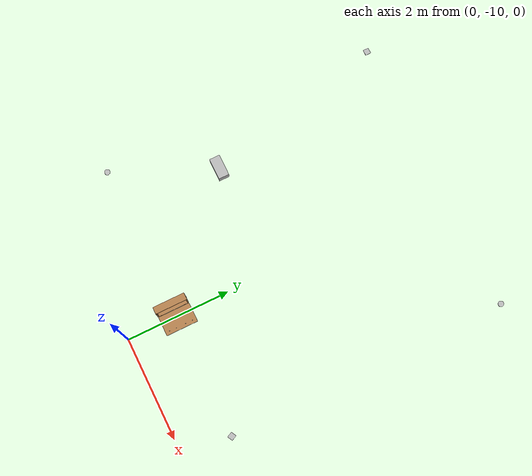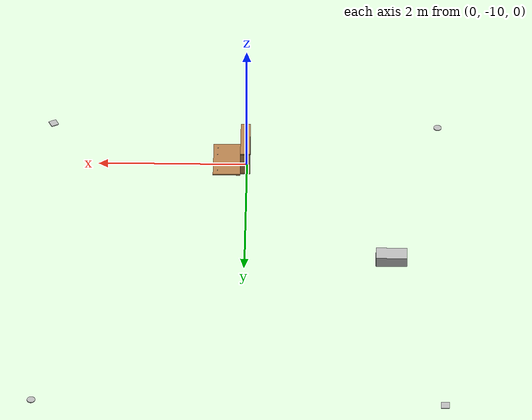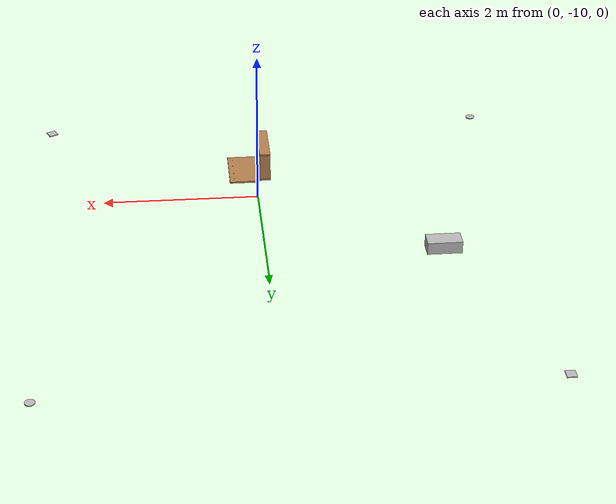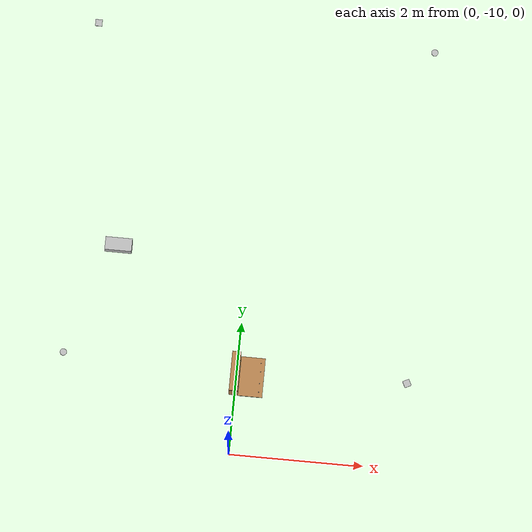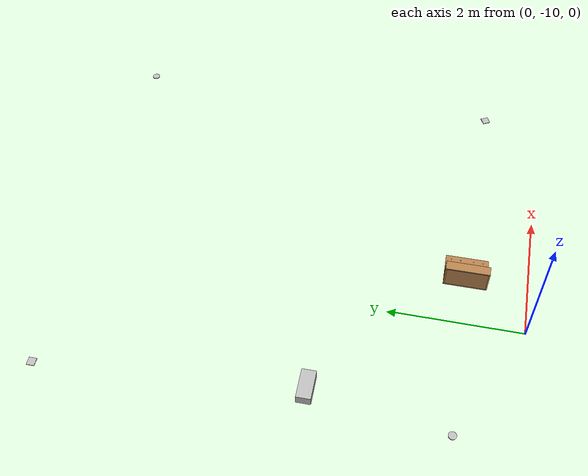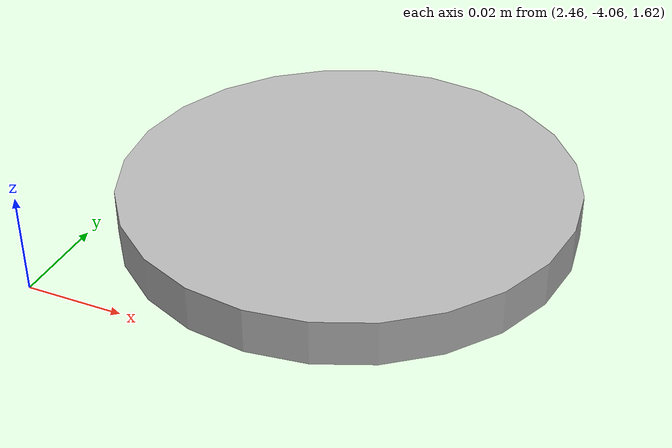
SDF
<sdf version="1.5">
 <world name="default">
  <include><uri>model://sun</uri></include>
  <include>
   <name>mark_label_circle</name>
   <uri>model://mark_label_circle</uri>
   <pose>2.5 -4 1.5 0 0 0</pose>
  </include>
  <include>
   <name>mark_label_square</name>
   <uri>model://mark_label_square</uri>
   <pose>-2.5 -4 1.5 0 0 0</pose>
  </include>
  <include>
   <name>mark_label_diamond</name>
   <uri>model://mark_label_square</uri>
   <pose>2.5 -9 1.5 0 0 90</pose>
  </include>
  <include>
   <name>mark_label_Triangle</name>
   <uri>model://mark_label_circle</uri>
   <pose>-2.5 -9 1.5 0 0 0</pose>
  </include>
  <include><name>cinder_block_2</name><uri>model://cinder_block_2</uri><pose>-1.9 -7.2 1 0 0 0</pose></include>
  <include><name>wooden_case</name><uri>model://wooden_case</uri><pose>0 -9 1 0 0 0</pose></include>
  <physics name="default_physics" default="0" type="ode">
   <gravity>0 0 -9.8066</gravity>
   <ode>
    <solver>
     <type>quick</type>
     <iters>10</iters>
     <sor>1.3</sor>
     <use_dynamic_moi_rescaling>0</use_dynamic_moi_rescaling>
    </solver>
    <constraints>
     <cfm>0</cfm>
     <erp>0.2</erp>
     <contact_max_correcting_vel>100</contact_max_correcting_vel>
     <contact_surface_layer>0.001</contact_surface_layer>
    </constraints>
   </ode>
   <max_step_size>0.004</max_step_size>
   <real_time_factor>1</real_time_factor>
   <real_time_update_rate>250</real_time_update_rate>
   <magnetic_field>6.0e-6 2.3e-5 -4.2e-5</magnetic_field>
  </physics>
 </world>
</sdf>

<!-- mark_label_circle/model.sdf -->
<sdf version='1.4'>
  <model name="mark_label_circle">
    <link name='link'>
      <pose>0 0 0.115 0 0 0</pose>
      <inertial>
        <mass>.990</mass>
        <inertia>
          <ixx>0.00058</ixx>
          <ixy>0</ixy>
          <ixz>0</ixz>
          <iyy>0.00058</iyy>
          <iyz>0</iyz>
          <izz>0.00019</izz>
        </inertia>
      </inertial>
      <collision name='collision'>
            <geometry>
                <cylinder>
                    <radius>.05</radius>
                    <length>.01</length>
                </cylinder>
            </geometry>
      </collision>

      <visual name='visual'>
        <geometry>
                <cylinder>
                  <radius>.05</radius>
                  <length>.01</length>>
                </cylinder>
        </geometry>

        <material>
          <script>
            <uri>model://mark_label_circle/materials/scripts</uri>
            <uri>model://mark_label_circle/materials/textures</uri>
            <name>Mark/Diffuse_circle</name>
          </script>
        </material>
      </visual>
    </link>     
  </model>
</sdf>

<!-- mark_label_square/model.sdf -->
<sdf version='1.4'>
  <model name="mark_label_square">
    <link name='link'>
      <pose>0 0 0.115 0 0 0</pose>
      <inertial>
        <mass>.790</mass>
        <inertia>
          <ixx>0.00058</ixx>
          <ixy>0</ixy>
          <ixz>0</ixz>
          <iyy>0.00058</iyy>
          <iyz>0</iyz>
          <izz>0.00019</izz>
        </inertia>
      </inertial>
      <collision name='collision'>
        <geometry>
                <box>
                  <size>.10 .10 .01</size>
                </box>
        </geometry>
      </collision>

      <visual name='visual'>
        <geometry>
                <box>
                  <size>.10 .10 .01</size>
                </box>
        </geometry>

        <material>
          <script>
            <uri>model://mark_label_square/materials/scripts</uri>
            <uri>model://mark_label_square/materials/textures</uri>
            <name>Mark/Diffuse_square</name>
          </script>
        </material>
      </visual>
    </link>     
  </model>
</sdf>

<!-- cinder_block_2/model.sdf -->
<sdf version="1.5">
  <model name="cinder_block_2">
    <link name="link">
      <inertial>
        <pose>0 0 0.07 0 0 0</pose>
        <!-- volume about 0.0085 m^3, density 2000 kg/m^3 -->
        <mass>5</mass>
        <!-- approximate as uniform box 0.37 x 0.17 x 0.20 m -->
        <inertia>
          <ixx>0.06908</ixx>
          <ixy>0.0000</ixy>
          <iyy>0.028705</iyy>
          <ixz>0.0000</ixz>
          <iyz>0.0000</iyz>
          <izz>0.073708</izz>
        </inertia>
      </inertial>
      <visual name="visual">
        <geometry>
	  <box>
		<size>0.396875 0.19368008 0.146</size>
	  </box>
        </geometry>
      </visual>
      <collision name="collision_box">
        <pose>0 0 0 0 0 0</pose>
        <geometry>
          <box>
            <size>0.396875 0.19368008 0.146</size>
          </box>
        </geometry>
        <surface>
          <contact>
            <ode>
              <max_vel>0.1</max_vel>
              <min_depth>0.001</min_depth>
            </ode>
          </contact>
          <friction>
            <ode>
              <mu>1.0</mu>
              <mu2>1.0</mu2>
            </ode>
          </friction>
        </surface>
      </collision>
    </link>
  </model>
</sdf>

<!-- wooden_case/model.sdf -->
<sdf version="1.5">
  <model name="wooden_case">
    <link name="base">

      <pose>0 0 0.024  0 0 0</pose>
      <inertial>
        <pose>-0.02218446808213116 0.0 0.17159249678128843  0 0 0</pose>
        <mass>3.9626366887499986</mass>
        <inertia>
          <ixx>0.2135364168029657</ixx>
          <ixy>0.0</ixy>
          <ixz>0.0007793770806417083</ixz>
          <iyy>0.07089428398599372</iyy>
          <iyz>0.0</iyz>
          <izz>0.15460392299497075</izz>
        </inertia>
      </inertial>

      <collision name="collision_back">
        <pose>-0.053975 0 0.17779999999999999  0 0 0</pose>
        <geometry>
          <box>
            <size>0.019049999999999997 0.5460999999999999 0.3175</size>
          </box>
        </geometry>
        <surface>
          <contact>

            <poissons_ratio>0.347</poissons_ratio>
            <elastic_modulus>8.8e+09</elastic_modulus>
            <ode>
              <kp>100000</kp>
              <kd>100</kd>
              <max_vel>100.0</max_vel>
              <min_depth>0.001</min_depth>
            </ode>
          </contact>
          <friction>
            <torsional>
              <coefficient>1.0</coefficient>
              <use_patch_radius>0</use_patch_radius>
              <surface_radius>0.01</surface_radius>
            </torsional>
          </friction>
        </surface>
      </collision>
      <visual name="visual_back">
        <pose>-0.053975 0 0.17779999999999999  0 0 0</pose>
        <geometry>
          <box>
            <size>0.019049999999999997 0.5460999999999999 0.3175</size>
          </box>
        </geometry>
        <material>
          <script>
            <uri>model://media/materials/scripts/gazebo.material</uri>
            <name>Gazebo/Wood</name>
          </script>
        </material>
      </visual>

      <collision name="collision_bottom">
        <pose>0 0 0.009524999999999999  0 0 0</pose>
        <geometry>
          <box>
            <size>0.127 0.5841999999999999 0.019049999999999997</size>
          </box>
        </geometry>
        <surface>
          <contact>

            <poissons_ratio>0.347</poissons_ratio>
            <elastic_modulus>8.8e+09</elastic_modulus>
            <ode>
              <kp>100000</kp>
              <kd>100</kd>
              <max_vel>100.0</max_vel>
              <min_depth>0.001</min_depth>
            </ode>
          </contact>
          <friction>
            <torsional>
              <coefficient>1.0</coefficient>
              <use_patch_radius>0</use_patch_radius>
              <surface_radius>0.01</surface_radius>
            </torsional>
          </friction>
        </surface>
      </collision>
      <visual name="visual_bottom">
        <pose>0 0 0.009524999999999999  0 0 0</pose>
        <geometry>
          <box>
            <size>0.127 0.5841999999999999 0.019049999999999997</size>
          </box>
        </geometry>
        <material>
          <script>
            <uri>model://media/materials/scripts/gazebo.material</uri>
            <name>Gazebo/Wood</name>
          </script>
        </material>
      </visual>

      <collision name="collision_top">
        <pose>0 0 0.34607499999999997  0 0 0</pose>
        <geometry>
          <box>
            <size>0.127 0.5841999999999999 0.019049999999999997</size>
          </box>
        </geometry>
        <surface>
          <contact>

            <poissons_ratio>0.347</poissons_ratio>
            <elastic_modulus>8.8e+09</elastic_modulus>
            <ode>
              <kp>100000</kp>
              <kd>100</kd>
              <max_vel>100.0</max_vel>
              <min_depth>0.001</min_depth>
            </ode>
          </contact>
          <friction>
            <torsional>
              <coefficient>1.0</coefficient>
              <use_patch_radius>0</use_patch_radius>
              <surface_radius>0.01</surface_radius>
            </torsional>
          </friction>
        </surface>
      </collision>
      <visual name="visual_top">
        <pose>0 0 0.34607499999999997  0 0 0</pose>
        <geometry>
          <box>
            <size>0.127 0.5841999999999999 0.019049999999999997</size>
          </box>
        </geometry>
        <material>
          <script>
            <uri>model://media/materials/scripts/gazebo.material</uri>
            <name>Gazebo/Wood</name>
          </script>
        </material>
      </visual>

      <collision name="collision_left">
        <pose>0 -0.28257499999999997 0.17779999999999999  0 0 0</pose>
        <geometry>
          <box>
            <size>0.127 0.019049999999999997 0.3175</size>
          </box>
        </geometry>
        <surface>
          <contact>

            <poissons_ratio>0.347</poissons_ratio>
            <elastic_modulus>8.8e+09</elastic_modulus>
            <ode>
              <kp>100000</kp>
              <kd>100</kd>
              <max_vel>100.0</max_vel>
              <min_depth>0.001</min_depth>
            </ode>
          </contact>
          <friction>
            <torsional>
              <coefficient>1.0</coefficient>
              <use_patch_radius>0</use_patch_radius>
              <surface_radius>0.01</surface_radius>
            </torsional>
          </friction>
        </surface>
      </collision>
      <visual name="visual_left">
        <pose>0 -0.28257499999999997 0.17779999999999999  0 0 0</pose>
        <geometry>
          <box>
            <size>0.127 0.019049999999999997 0.3175</size>
          </box>
        </geometry>
        <material>
          <script>
            <uri>model://media/materials/scripts/gazebo.material</uri>
            <name>Gazebo/Wood</name>
          </script>
        </material>
      </visual>

      <collision name="collision_right">
        <pose>0 0.28257499999999997 0.17779999999999999  0 0 0</pose>
        <geometry>
          <box>
            <size>0.127 0.019049999999999997 0.3175</size>
          </box>
        </geometry>
        <surface>
          <contact>

            <poissons_ratio>0.347</poissons_ratio>
            <elastic_modulus>8.8e+09</elastic_modulus>
            <ode>
              <kp>100000</kp>
              <kd>100</kd>
              <max_vel>100.0</max_vel>
              <min_depth>0.001</min_depth>
            </ode>
          </contact>
          <friction>
            <torsional>
              <coefficient>1.0</coefficient>
              <use_patch_radius>0</use_patch_radius>
              <surface_radius>0.01</surface_radius>
            </torsional>
          </friction>
        </surface>
      </collision>
      <visual name="visual_right">
        <pose>0 0.28257499999999997 0.17779999999999999  0 0 0</pose>
        <geometry>
          <box>
            <size>0.127 0.019049999999999997 0.3175</size>
          </box>
        </geometry>
        <material>
          <script>
            <uri>model://media/materials/scripts/gazebo.material</uri>
            <name>Gazebo/Wood</name>
          </script>
        </material>
      </visual>

      <collision name="collision_block_left">
        <pose>0.009500000000000001 -0.21509999999999996 -0.012  0 0 0</pose>
        <geometry>
          <box>
            <size>0.108 0.05 0.024</size>
          </box>
        </geometry>
        <surface>
          <contact>

            <poissons_ratio>0.347</poissons_ratio>
            <elastic_modulus>8.8e+09</elastic_modulus>
            <ode>
              <kp>100000</kp>
              <kd>100</kd>
              <max_vel>100.0</max_vel>
              <min_depth>0.001</min_depth>
            </ode>
          </contact>
          <friction>
            <torsional>
              <coefficient>1.0</coefficient>
              <use_patch_radius>0</use_patch_radius>
              <surface_radius>0.01</surface_radius>
            </torsional>
          </friction>
        </surface>
      </collision>
      <visual name="visual_block_left">
        <pose>0.009500000000000001 -0.21509999999999996 -0.012  0 0 0</pose>
        <geometry>
          <box>
            <size>0.108 0.05 0.024</size>
          </box>
        </geometry>
        <material>
          <script>
            <uri>model://media/materials/scripts/gazebo.material</uri>
            <name>Gazebo/Wood</name>
          </script>
        </material>
      </visual>

      <collision name="collision_block_right">
        <pose>0.009500000000000001 0.21509999999999996 -0.012  0 0 0</pose>
        <geometry>
          <box>
            <size>0.108 0.05 0.024</size>
          </box>
        </geometry>
        <surface>
          <contact>

            <poissons_ratio>0.347</poissons_ratio>
            <elastic_modulus>8.8e+09</elastic_modulus>
            <ode>
              <kp>100000</kp>
              <kd>100</kd>
              <max_vel>100.0</max_vel>
              <min_depth>0.001</min_depth>
            </ode>
          </contact>
          <friction>
            <torsional>
              <coefficient>1.0</coefficient>
              <use_patch_radius>0</use_patch_radius>
              <surface_radius>0.01</surface_radius>
            </torsional>
          </friction>
        </surface>
      </collision>
      <visual name="visual_block_right">
        <pose>0.009500000000000001 0.21509999999999996 -0.012  0 0 0</pose>
        <geometry>
          <box>
            <size>0.108 0.05 0.024</size>
          </box>
        </geometry>
        <material>
          <script>
            <uri>model://media/materials/scripts/gazebo.material</uri>
            <name>Gazebo/Wood</name>
          </script>
        </material>
      </visual>

    </link>

    <link name="lid">

      <pose>0.24377499999999996 0 0.009524999999999999  0 0 0</pose>
      <inertial>
        <mass>1.9787379779999992</mass>
        <inertia>
          <ixx>0.05633673842708405</ixx>
          <ixy>0</ixy>
          <ixz>0</ixz>
          <iyy>0.020911016446734258</iyy>
          <iyz>0</iyz>
          <izz>0.07712807338064145</izz>
        </inertia>
      </inertial>
      <collision name="collision">
        <geometry>
          <box>
            <size>0.35559999999999997 0.5841999999999999 0.019049999999999997</size>
          </box>
        </geometry>
        <surface>
          <contact>

            <poissons_ratio>0.347</poissons_ratio>
            <elastic_modulus>8.8e+09</elastic_modulus>
            <ode>
              <kp>100000</kp>
              <kd>100</kd>
              <max_vel>100.0</max_vel>
              <min_depth>0.001</min_depth>
            </ode>
          </contact>
          <friction>
            <torsional>
              <coefficient>1.0</coefficient>
              <use_patch_radius>0</use_patch_radius>
              <surface_radius>0.01</surface_radius>
            </torsional>
          </friction>
        </surface>
      </collision>
      <visual name="visual">
        <geometry>
          <box>
            <size>0.35559999999999997 0.5841999999999999 0.019049999999999997</size>
          </box>
        </geometry>
        <material>
          <script>
            <uri>model://media/materials/scripts/gazebo.material</uri>
            <name>Gazebo/Wood</name>
          </script>
        </material>
      </visual>

      <visual name="tee_nut_1">
        <pose>0.122 -0.216 0.0  0 0 0</pose>
        <geometry>
          <cylinder>
            <radius>0.00635</radius>
            <length>0.019240499999999997</length>
          </cylinder>
        </geometry>
        <material>
          <script>
            <uri>model://media/materials/scripts/gazebo.material</uri>
            <name>Gazebo/Grey</name>
          </script>
        </material>
      </visual>

      <visual name="tee_nut_2">
        <pose>0.122 -0.088 0.0  0 0 0</pose>
        <geometry>
          <cylinder>
            <radius>0.00635</radius>
            <length>0.019240499999999997</length>
          </cylinder>
        </geometry>
        <material>
          <script>
            <uri>model://media/materials/scripts/gazebo.material</uri>
            <name>Gazebo/Grey</name>
          </script>
        </material>
      </visual>

      <visual name="tee_nut_3">
        <pose>0.122 0.088 0.0  0 0 0</pose>
        <geometry>
          <cylinder>
            <radius>0.00635</radius>
            <length>0.019240499999999997</length>
          </cylinder>
        </geometry>
        <material>
          <script>
            <uri>model://media/materials/scripts/gazebo.material</uri>
            <name>Gazebo/Grey</name>
          </script>
        </material>
      </visual>

      <visual name="tee_nut_4">
        <pose>0.122 0.216 0.0  0 0 0</pose>
        <geometry>
          <cylinder>
            <radius>0.00635</radius>
            <length>0.019240499999999997</length>
          </cylinder>
        </geometry>
        <material>
          <script>
            <uri>model://media/materials/scripts/gazebo.material</uri>
            <name>Gazebo/Grey</name>
          </script>
        </material>
      </visual>

    </link>

    <joint name="lid_hinge" type="revolute">
      <pose>-0.17779999999999999 0 0.019049999999999997  0 0 0</pose>
      <parent>base</parent>
      <child>lid</child>
      <axis>
        <xyz>0 1 0</xyz>
        <limit>
          <upper>0.5235987755982988</upper>
          <lower>-1.5707963267948966</lower>
        </limit>
      </axis>
    </joint>

  </model>
</sdf>
